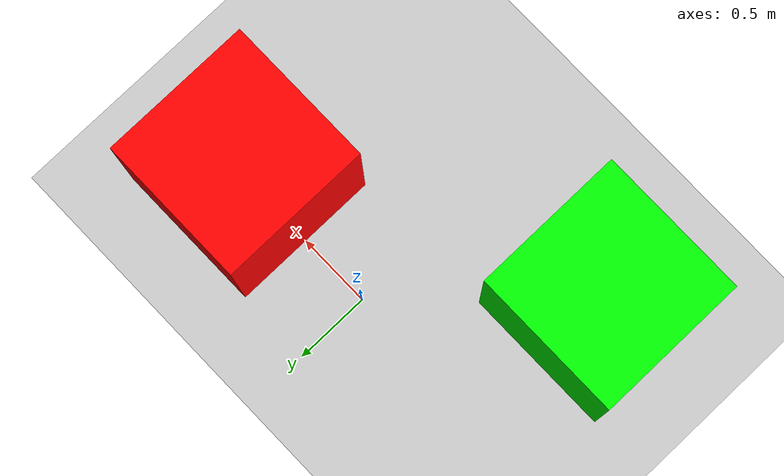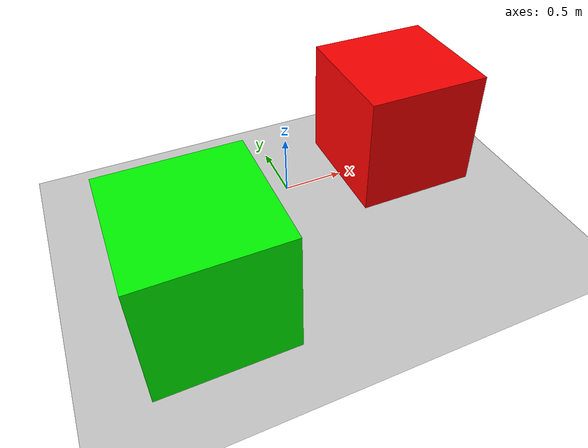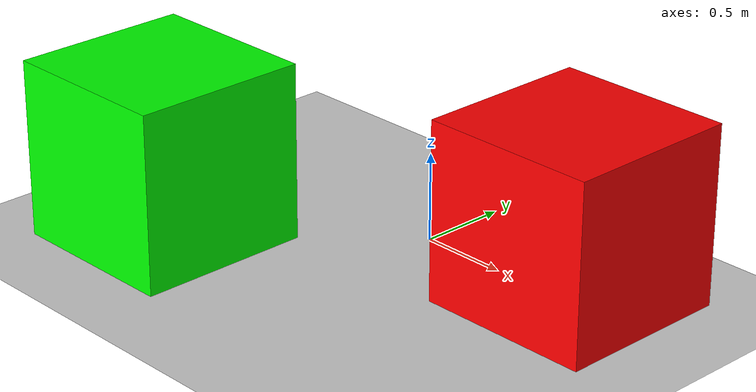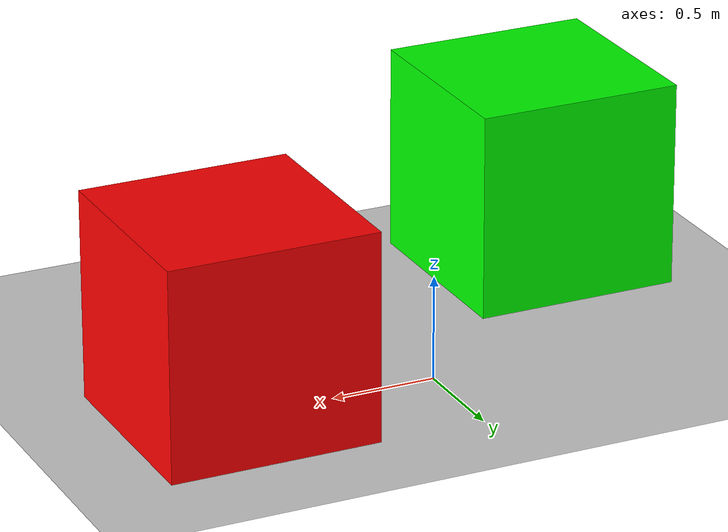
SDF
<?xml version="1.0" ?>
<sdf version="1.6">
  <world name="simple_world">

    <!-- Lighting -->
    <include>
      <uri>model://sun</uri>
    </include>

    <!-- Ground plane -->
    <include>
      <uri>model://ground_plane</uri>
    </include>

    <!-- Obstacles -->
    <model name="box1">
      <pose>1 0 0.5 0 0 0</pose> <!-- x y z roll pitch yaw -->
      <link name="link">
        <collision name="collision">
          <geometry>
            <box>
              <size>1 1 1</size>
            </box>
          </geometry>
        </collision>
        <visual name="visual">
          <geometry>
            <box>
              <size>1 1 1</size>
            </box>
          </geometry>
          <material>
            <ambient>1 0 0 1</ambient> <!-- Red -->
          </material>
        </visual>
      </link>
    </model>

    <model name="box2">
      <pose>-1 -1 0.5 0 0 0</pose>
      <link name="link">
        <collision name="collision">
          <geometry>
            <box>
              <size>1 1 1</size>
            </box>
          </geometry>
        </collision>
        <visual name="visual">
          <geometry>
            <box>
              <size>1 1 1</size>
            </box>
          </geometry>
          <material>
            <ambient>0 1 0 1</ambient> <!-- Green -->
          </material>
        </visual>
      </link>
    </model>

  </world>
</sdf>
